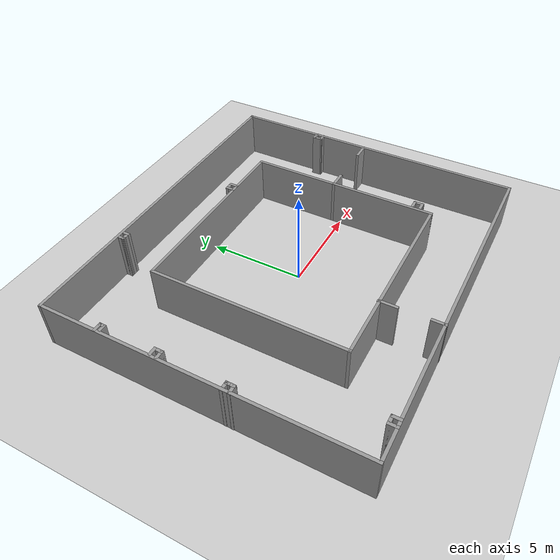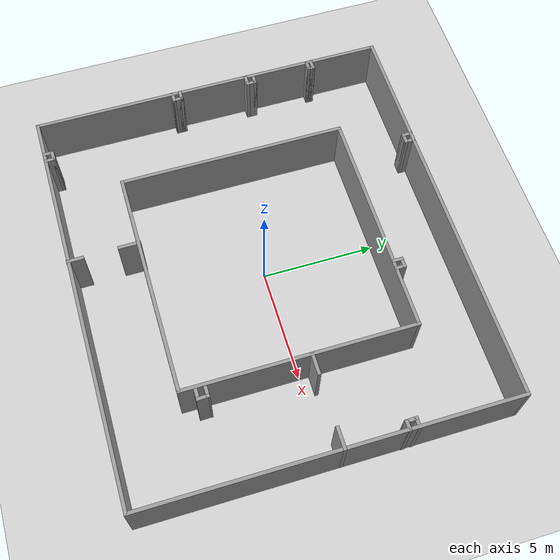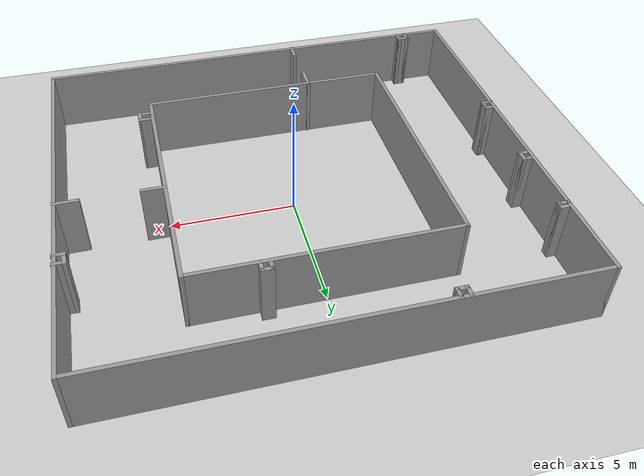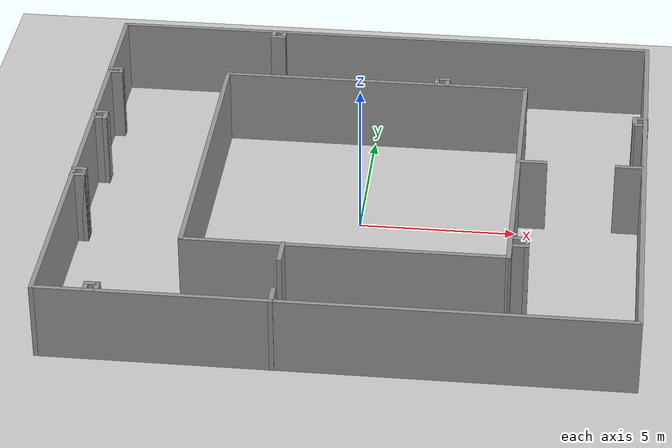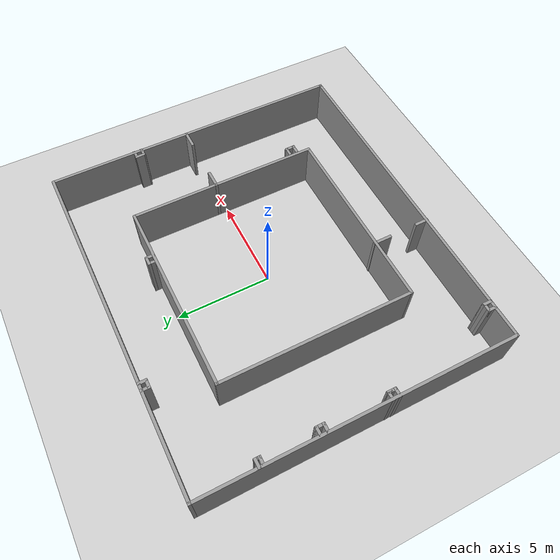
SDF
<sdf version="1.6">
 <world name="default">
  <light name="sun" type="directional">
   <pose>0 0 10 0 -0 0</pose>
   <diffuse>0.8 0.8 0.8 1</diffuse>
   <specular>0.2 0.2 0.2 1</specular>
   <attenuation>
    <range>1000</range>
    <constant>0.9</constant>
    <linear>0.01</linear>
    <quadratic>0.001</quadratic>
   </attenuation>
   <direction>-0.5 0.1 -0.9</direction>
  </light>
  <model name="ground_plane">
   <static>1</static>
   <link name="link">
    <collision name="collision">
     <geometry><plane><normal>0 0 1</normal><size>100 100</size></plane></geometry>
     <surface><friction><ode><mu>100</mu><mu2>50</mu2></ode></friction></surface>
    </collision>
    <visual name="visual">
     <cast_shadows>0</cast_shadows>
     <geometry><plane><normal>0 0 1</normal><size>100 100</size></plane></geometry>
     <material>
      <script><uri>file://media/materials/scripts/gazebo.material</uri><name>Gazebo/Grey</name></script>
     </material>
    </visual>
   </link>
  </model>
  <gravity>0 0 -9.8</gravity>
  <magnetic_field>6e-06 2.3e-05 -4.2e-05</magnetic_field>
  <atmosphere type="adiabatic"/>
  <physics name="default_physics" default="0" type="ode">
   <max_step_size>0.001</max_step_size>
   <real_time_factor>1</real_time_factor>
   <real_time_update_rate>1000</real_time_update_rate>
  </physics>
  <scene><ambient>0.4 0.4 0.4 1</ambient><background>0.7 0.7 0.7 1</background><shadows>1</shadows></scene>
  <audio><device>default</device></audio>
  <spherical_coordinates>
   <surface_model>EARTH_WGS84</surface_model>
   <latitude_deg>0</latitude_deg>
   <longitude_deg>0</longitude_deg>
   <elevation>0</elevation>
   <heading_deg>0</heading_deg>
  </spherical_coordinates>
  <model name="smallHallwayMeasured2">
   <link name="Wall_11">
    <collision name="Wall_11_Collision">
     <geometry><box><size>10.15 0.15 2.5</size></box></geometry>
     <pose>0 0 1.25 0 -0 0</pose>
    </collision>
    <visual name="Wall_11_Visual">
     <pose>0 0 1.25 0 -0 0</pose>
     <geometry><box><size>10.15 0.15 2.5</size></box></geometry>
     <material>
      <script><uri>file://media/materials/scripts/gazebo.material</uri><name>Gazebo/Grey</name></script>
      <ambient>1 1 1 1</ambient>
     </material>
     <meta><layer>0</layer></meta>
    </visual>
    <pose>-4.99509 0.008831 0 0 -0 1.5708</pose>
   </link>
   <link name="Wall_13">
    <collision name="Wall_13_Collision">
     <geometry><box><size>10.15 0.15 2.5</size></box></geometry>
     <pose>0 0 1.25 0 -0 0</pose>
    </collision>
    <visual name="Wall_13_Visual">
     <pose>0 0 1.25 0 -0 0</pose>
     <geometry><box><size>10.15 0.15 2.5</size></box></geometry>
     <material>
      <script><uri>file://media/materials/scripts/gazebo.material</uri><name>Gazebo/Grey</name></script>
      <ambient>1 1 1 1</ambient>
     </material>
     <meta><layer>0</layer></meta>
    </visual>
    <pose>0.004907 5.00883 0 0 -0 0</pose>
   </link>
   <link name="Wall_15">
    <collision name="Wall_15_Collision">
     <geometry><box><size>10.15 0.15 2.5</size></box></geometry>
     <pose>0 0 1.25 0 -0 0</pose>
    </collision>
    <visual name="Wall_15_Visual">
     <pose>0 0 1.25 0 -0 0</pose>
     <geometry><box><size>10.15 0.15 2.5</size></box></geometry>
     <material>
      <script><uri>file://media/materials/scripts/gazebo.material</uri><name>Gazebo/Grey</name></script>
      <ambient>1 1 1 1</ambient>
     </material>
     <meta><layer>0</layer></meta>
    </visual>
    <pose>5.00491 0.008831 0 0 -0 1.5708</pose>
   </link>
   <link name="Wall_17">
    <collision name="Wall_17_Collision">
     <geometry><box><size>18.15 0.15 2.5</size></box></geometry>
     <pose>0 0 1.25 0 -0 0</pose>
    </collision>
    <visual name="Wall_17_Visual">
     <pose>0 0 1.25 0 -0 0</pose>
     <geometry><box><size>18.15 0.15 2.5</size></box></geometry>
     <material>
      <script><uri>file://media/materials/scripts/gazebo.material</uri><name>Gazebo/Grey</name></script>
      <ambient>1 1 1 1</ambient>
     </material>
     <meta><layer>0</layer></meta>
    </visual>
    <pose>0.004907 -7.99117 0 0 -0 3.14159</pose>
   </link>
   <link name="Wall_19">
    <collision name="Wall_19_Collision">
     <geometry><box><size>16.15 0.15 2.5</size></box></geometry>
     <pose>0 0 1.25 0 -0 0</pose>
    </collision>
    <visual name="Wall_19_Visual">
     <pose>0 0 1.25 0 -0 0</pose>
     <geometry><box><size>16.15 0.15 2.5</size></box></geometry>
     <material>
      <script><uri>file://media/materials/scripts/gazebo.material</uri><name>Gazebo/Grey</name></script>
      <ambient>1 1 1 1</ambient>
     </material>
     <meta><layer>0</layer></meta>
    </visual>
    <pose>-8.99509 0.008831 0 0 -0 -1.5708</pose>
   </link>
   <link name="Wall_21">
    <collision name="Wall_21_Collision">
     <geometry><box><size>16.15 0.15 2.5</size></box></geometry>
     <pose>0 0 1.25 0 -0 0</pose>
    </collision>
    <visual name="Wall_21_Visual">
     <pose>0 0 1.25 0 -0 0</pose>
     <geometry><box><size>16.15 0.15 2.5</size></box></geometry>
     <material>
      <script><uri>file://media/materials/scripts/gazebo.material</uri><name>Gazebo/Grey</name></script>
      <ambient>1 1 1 1</ambient>
     </material>
     <meta><layer>0</layer></meta>
    </visual>
    <pose>9.00491 0.008831 0 0 -0 1.5708</pose>
   </link>
   <link name="Wall_23">
    <collision name="Wall_23_Collision">
     <geometry><box><size>18.15 0.15 2.5</size></box></geometry>
     <pose>0 0 1.25 0 -0 0</pose>
    </collision>
    <visual name="Wall_23_Visual">
     <pose>0 0 1.25 0 -0 0</pose>
     <geometry><box><size>18.15 0.15 2.5</size></box></geometry>
     <material>
      <script><uri>file://media/materials/scripts/gazebo.material</uri><name>Gazebo/Grey</name></script>
      <ambient>1 1 1 1</ambient>
     </material>
     <meta><layer>0</layer></meta>
    </visual>
    <pose>0.004907 8.00883 0 0 -0 0</pose>
   </link>
   <link name="Wall_25">
    <collision name="Wall_25_Collision">
     <geometry><box><size>1 0.15 2.5</size></box></geometry>
     <pose>0 0 1.25 0 -0 0</pose>
    </collision>
    <visual name="Wall_25_Visual">
     <pose>0 0 1.25 0 -0 0</pose>
     <geometry><box><size>1 0.15 2.5</size></box></geometry>
     <material>
      <script><uri>file://media/materials/scripts/gazebo.material</uri><name>Gazebo/Grey</name></script>
      <ambient>1 1 1 1</ambient>
     </material>
     <meta><layer>0</layer></meta>
    </visual>
    <pose>5.42972 0.48445 0 0 -0 0</pose>
   </link>
   <link name="Wall_27">
    <collision name="Wall_27_Collision">
     <geometry><box><size>1 0.15 2.5</size></box></geometry>
     <pose>0 0 1.25 0 -0 0</pose>
    </collision>
    <visual name="Wall_27_Visual">
     <pose>0 0 1.25 0 -0 0</pose>
     <geometry><box><size>1 0.15 2.5</size></box></geometry>
     <material>
      <script><uri>file://media/materials/scripts/gazebo.material</uri><name>Gazebo/Grey</name></script>
      <ambient>1 1 1 1</ambient>
     </material>
     <meta><layer>0</layer></meta>
    </visual>
    <pose>8.58328 0.47376 0 0 -0 3.14159</pose>
   </link>
   <link name="Wall_29">
    <collision name="Wall_29_Collision">
     <geometry><box><size>1 0.15 2.5</size></box></geometry>
     <pose>0 0 1.25 0 -0 0</pose>
    </collision>
    <visual name="Wall_29_Visual">
     <pose>0 0 1.25 0 -0 0</pose>
     <geometry><box><size>1 0.15 2.5</size></box></geometry>
     <material>
      <script><uri>file://media/materials/scripts/gazebo.material</uri><name>Gazebo/Grey</name></script>
      <ambient>1 1 1 1</ambient>
     </material>
     <meta><layer>0</layer></meta>
    </visual>
    <pose>-1.86045 -5.38166 0 0 -0 -1.5708</pose>
   </link>
   <link name="Wall_31">
    <collision name="Wall_31_Collision">
     <geometry><box><size>0.75 0.15 2.5</size></box></geometry>
     <pose>0 0 1.25 0 -0 0</pose>
    </collision>
    <visual name="Wall_31_Visual">
     <pose>0 0 1.25 0 -0 0</pose>
     <geometry><box><size>0.75 0.15 2.5</size></box></geometry>
     <material>
      <script><uri>file://media/materials/scripts/gazebo.material</uri><name>Gazebo/Grey</name></script>
      <ambient>1 1 1 1</ambient>
     </material>
     <meta><layer>0</layer></meta>
    </visual>
    <pose>-1.83437 -7.70883 0 0 -0 1.5708</pose>
   </link>
   <link name="Wall_33">
    <collision name="Wall_33_Collision">
     <geometry><box><size>0.5 0.15 2.5</size></box></geometry>
     <pose>0 0 1.25 0 -0 0</pose>
    </collision>
    <visual name="Wall_33_Visual">
     <pose>0 0 1.25 0 -0 0</pose>
     <geometry><box><size>0.5 0.15 2.5</size></box></geometry>
     <material>
      <script><uri>file://media/materials/scripts/gazebo.material</uri><name>Gazebo/Grey</name></script>
      <ambient>1 1 1 1</ambient>
     </material>
     <meta><layer>0</layer></meta>
    </visual>
    <pose>-8.78111 2.11291 0 0 -0 0</pose>
   </link>
   <link name="Wall_34">
    <collision name="Wall_34_Collision">
     <geometry><box><size>0.5 0.15 2.5</size></box></geometry>
     <pose>0 0 1.25 0 -0 0</pose>
    </collision>
    <visual name="Wall_34_Visual">
     <pose>0 0 1.25 0 -0 0</pose>
     <geometry><box><size>0.5 0.15 2.5</size></box></geometry>
     <material>
      <script><uri>file://media/materials/scripts/gazebo.material</uri><name>Gazebo/Grey</name></script>
      <ambient>1 1 1 1</ambient>
     </material>
     <meta><layer>0</layer></meta>
    </visual>
    <pose>-8.60611 1.93791 0 0 -0 -1.5708</pose>
   </link>
   <link name="Wall_35">
    <collision name="Wall_35_Collision">
     <geometry><box><size>0.5 0.15 2.5</size></box></geometry>
     <pose>0 0 1.25 0 -0 0</pose>
    </collision>
    <visual name="Wall_35_Visual">
     <pose>0 0 1.25 0 -0 0</pose>
     <geometry><box><size>0.5 0.15 2.5</size></box></geometry>
     <material>
      <script><uri>file://media/materials/scripts/gazebo.material</uri><name>Gazebo/Grey</name></script>
      <ambient>1 1 1 1</ambient>
     </material>
     <meta><layer>0</layer></meta>
    </visual>
    <pose>-8.78111 1.76291 0 0 -0 3.14159</pose>
   </link>
   <link name="Wall_37">
    <collision name="Wall_37_Collision">
     <geometry><box><size>0.5 0.15 2.5</size></box></geometry>
     <pose>0 0 1.25 0 -0 0</pose>
    </collision>
    <visual name="Wall_37_Visual">
     <pose>0 0 1.25 0 -0 0</pose>
     <geometry><box><size>0.5 0.15 2.5</size></box></geometry>
     <material>
      <script><uri>file://media/materials/scripts/gazebo.material</uri><name>Gazebo/Grey</name></script>
      <ambient>1 1 1 1</ambient>
     </material>
     <meta><layer>0</layer></meta>
    </visual>
    <pose>-8.83328 -1.38274 0 0 -0 0</pose>
   </link>
   <link name="Wall_38">
    <collision name="Wall_38_Collision">
     <geometry><box><size>0.25 0.15 2.5</size></box></geometry>
     <pose>0 0 1.25 0 -0 0</pose>
    </collision>
    <visual name="Wall_38_Visual">
     <pose>0 0 1.25 0 -0 0</pose>
     <geometry><box><size>0.25 0.15 2.5</size></box></geometry>
     <material>
      <script><uri>file://media/materials/scripts/gazebo.material</uri><name>Gazebo/Grey</name></script>
      <ambient>1 1 1 1</ambient>
     </material>
     <meta><layer>0</layer></meta>
    </visual>
    <pose>-8.65828 -1.43274 0 0 -0 -1.5708</pose>
   </link>
   <link name="Wall_41">
    <collision name="Wall_41_Collision">
     <geometry><box><size>0.5 0.15 2.5</size></box></geometry>
     <pose>0 0 1.25 0 -0 0</pose>
    </collision>
    <visual name="Wall_41_Visual">
     <pose>0 0 1.25 0 -0 0</pose>
     <geometry><box><size>0.5 0.15 2.5</size></box></geometry>
     <material>
      <script><uri>file://media/materials/scripts/gazebo.material</uri><name>Gazebo/Grey</name></script>
      <ambient>1 1 1 1</ambient>
     </material>
     <meta><layer>0</layer></meta>
    </visual>
    <pose>-8.65828 -1.55774 0 0 -0 -1.5708</pose>
   </link>
   <link name="Wall_42">
    <collision name="Wall_42_Collision">
     <geometry><box><size>0.5 0.15 2.5</size></box></geometry>
     <pose>0 0 1.25 0 -0 0</pose>
    </collision>
    <visual name="Wall_42_Visual">
     <pose>0 0 1.25 0 -0 0</pose>
     <geometry><box><size>0.5 0.15 2.5</size></box></geometry>
     <material>
      <script><uri>file://media/materials/scripts/gazebo.material</uri><name>Gazebo/Grey</name></script>
      <ambient>1 1 1 1</ambient>
     </material>
     <meta><layer>0</layer></meta>
    </visual>
    <pose>-8.83328 -1.73274 0 0 -0 3.14159</pose>
   </link>
   <link name="Wall_44">
    <collision name="Wall_44_Collision">
     <geometry><box><size>0.5 0.15 2.5</size></box></geometry>
     <pose>0 0 1.25 0 -0 0</pose>
    </collision>
    <visual name="Wall_44_Visual">
     <pose>0 0 1.25 0 -0 0</pose>
     <geometry><box><size>0.5 0.15 2.5</size></box></geometry>
     <material>
      <script><uri>file://media/materials/scripts/gazebo.material</uri><name>Gazebo/Grey</name></script>
      <ambient>1 1 1 1</ambient>
     </material>
     <meta><layer>0</layer></meta>
    </visual>
    <pose>-8.80719 4.95639 0 0 -0 0</pose>
   </link>
   <link name="Wall_45">
    <collision name="Wall_45_Collision">
     <geometry><box><size>0.25 0.15 2.5</size></box></geometry>
     <pose>0 0 1.25 0 -0 0</pose>
    </collision>
    <visual name="Wall_45_Visual">
     <pose>0 0 1.25 0 -0 0</pose>
     <geometry><box><size>0.25 0.15 2.5</size></box></geometry>
     <material>
      <script><uri>file://media/materials/scripts/gazebo.material</uri><name>Gazebo/Grey</name></script>
      <ambient>1 1 1 1</ambient>
     </material>
     <meta><layer>0</layer></meta>
    </visual>
    <pose>-8.63219 4.90639 0 0 -0 -1.5708</pose>
   </link>
   <link name="Wall_46">
    <collision name="Wall_46_Collision">
     <geometry><box><size>0.25 0.15 2.5</size></box></geometry>
     <pose>0 0 1.25 0 -0 0</pose>
    </collision>
    <visual name="Wall_46_Visual">
     <pose>0 0 1.25 0 -0 0</pose>
     <geometry><box><size>0.25 0.15 2.5</size></box></geometry>
     <material>
      <script><uri>file://media/materials/scripts/gazebo.material</uri><name>Gazebo/Grey</name></script>
      <ambient>1 1 1 1</ambient>
     </material>
     <meta><layer>0</layer></meta>
    </visual>
    <pose>-8.63219 4.80639 0 0 -0 -1.5708</pose>
   </link>
   <link name="Wall_47">
    <collision name="Wall_47_Collision">
     <geometry><box><size>0.5 0.15 2.5</size></box></geometry>
     <pose>0 0 1.25 0 -0 0</pose>
    </collision>
    <visual name="Wall_47_Visual">
     <pose>0 0 1.25 0 -0 0</pose>
     <geometry><box><size>0.5 0.15 2.5</size></box></geometry>
     <material>
      <script><uri>file://media/materials/scripts/gazebo.material</uri><name>Gazebo/Grey</name></script>
      <ambient>1 1 1 1</ambient>
     </material>
     <meta><layer>0</layer></meta>
    </visual>
    <pose>-8.80719 4.75639 0 0 -0 3.14159</pose>
   </link>
   <link name="Wall_49">
    <collision name="Wall_49_Collision">
     <geometry><box><size>0.5 0.15 2.5</size></box></geometry>
     <pose>0 0 1.25 0 -0 0</pose>
    </collision>
    <visual name="Wall_49_Visual">
     <pose>0 0 1.25 0 -0 0</pose>
     <geometry><box><size>0.5 0.15 2.5</size></box></geometry>
     <material>
      <script><uri>file://media/materials/scripts/gazebo.material</uri><name>Gazebo/Grey</name></script>
      <ambient>1 1 1 1</ambient>
     </material>
     <meta><layer>0</layer></meta>
    </visual>
    <pose>-3.81697 7.83356 0 0 -0 -1.5708</pose>
   </link>
   <link name="Wall_50">
    <collision name="Wall_50_Collision">
     <geometry><box><size>0.5 0.15 2.5</size></box></geometry>
     <pose>0 0 1.25 0 -0 0</pose>
    </collision>
    <visual name="Wall_50_Visual">
     <pose>0 0 1.25 0 -0 0</pose>
     <geometry><box><size>0.5 0.15 2.5</size></box></geometry>
     <material>
      <script><uri>file://media/materials/scripts/gazebo.material</uri><name>Gazebo/Grey</name></script>
      <ambient>1 1 1 1</ambient>
     </material>
     <meta><layer>0</layer></meta>
    </visual>
    <pose>-3.64197 7.65856 0 0 -0 0</pose>
   </link>
   <link name="Wall_53">
    <collision name="Wall_53_Collision">
     <geometry><box><size>0.5 0.15 2.5</size></box></geometry>
     <pose>0 0 1.25 0 -0 0</pose>
    </collision>
    <visual name="Wall_53_Visual">
     <pose>0 0 1.25 0 -0 0</pose>
     <geometry><box><size>0.5 0.15 2.5</size></box></geometry>
     <material>
      <script><uri>file://media/materials/scripts/gazebo.material</uri><name>Gazebo/Grey</name></script>
      <ambient>1 1 1 1</ambient>
     </material>
     <meta><layer>0</layer></meta>
    </visual>
    <pose>-3.46698 7.83356 0 0 -0 1.5708</pose>
   </link>
   <link name="Wall_55">
    <collision name="Wall_55_Collision">
     <geometry><box><size>0.5 0.15 2.5</size></box></geometry>
     <pose>0 0 1.25 0 -0 0</pose>
    </collision>
    <visual name="Wall_55_Visual">
     <pose>0 0 1.25 0 -0 0</pose>
     <geometry><box><size>0.5 0.15 2.5</size></box></geometry>
     <material>
      <script><uri>file://media/materials/scripts/gazebo.material</uri><name>Gazebo/Grey</name></script>
      <ambient>1 1 1 1</ambient>
     </material>
     <meta><layer>0</layer></meta>
    </visual>
    <pose>2.03633 5.19847 0 0 -0 1.5708</pose>
   </link>
   <link name="Wall_56">
    <collision name="Wall_56_Collision">
     <geometry><box><size>0.5 0.15 2.5</size></box></geometry>
     <pose>0 0 1.25 0 -0 0</pose>
    </collision>
    <visual name="Wall_56_Visual">
     <pose>0 0 1.25 0 -0 0</pose>
     <geometry><box><size>0.5 0.15 2.5</size></box></geometry>
     <material>
      <script><uri>file://media/materials/scripts/gazebo.material</uri><name>Gazebo/Grey</name></script>
      <ambient>1 1 1 1</ambient>
     </material>
     <meta><layer>0</layer></meta>
    </visual>
    <pose>2.21132 5.37347 0 0 -0 0</pose>
   </link>
   <link name="Wall_57">
    <collision name="Wall_57_Collision">
     <geometry><box><size>0.5 0.15 2.5</size></box></geometry>
     <pose>0 0 1.25 0 -0 0</pose>
    </collision>
    <visual name="Wall_57_Visual">
     <pose>0 0 1.25 0 -0 0</pose>
     <geometry><box><size>0.5 0.15 2.5</size></box></geometry>
     <material>
      <script><uri>file://media/materials/scripts/gazebo.material</uri><name>Gazebo/Grey</name></script>
      <ambient>1 1 1 1</ambient>
     </material>
     <meta><layer>0</layer></meta>
    </visual>
    <pose>2.38632 5.19847 0 0 -0 -1.5708</pose>
   </link>
   <link name="Wall_59">
    <collision name="Wall_59_Collision">
     <geometry><box><size>0.5 0.15 2.5</size></box></geometry>
     <pose>0 0 1.25 0 -0 0</pose>
    </collision>
    <visual name="Wall_59_Visual">
     <pose>0 0 1.25 0 -0 0</pose>
     <geometry><box><size>0.5 0.15 2.5</size></box></geometry>
     <material>
      <script><uri>file://media/materials/scripts/gazebo.material</uri><name>Gazebo/Grey</name></script>
      <ambient>1 1 1 1</ambient>
     </material>
     <meta><layer>0</layer></meta>
    </visual>
    <pose>-7.40154 -7.81156 0 0 -0 1.5708</pose>
   </link>
   <link name="Wall_60">
    <collision name="Wall_60_Collision">
     <geometry><box><size>0.5 0.15 2.5</size></box></geometry>
     <pose>0 0 1.25 0 -0 0</pose>
    </collision>
    <visual name="Wall_60_Visual">
     <pose>0 0 1.25 0 -0 0</pose>
     <geometry><box><size>0.5 0.15 2.5</size></box></geometry>
     <material>
      <script><uri>file://media/materials/scripts/gazebo.material</uri><name>Gazebo/Grey</name></script>
      <ambient>1 1 1 1</ambient>
     </material>
     <meta><layer>0</layer></meta>
    </visual>
    <pose>-7.22654 -7.63656 0 0 -0 0</pose>
   </link>
   <link name="Wall_61">
    <collision name="Wall_61_Collision">
     <geometry><box><size>0.5 0.15 2.5</size></box></geometry>
     <pose>0 0 1.25 0 -0 0</pose>
    </collision>
    <visual name="Wall_61_Visual">
     <pose>0 0 1.25 0 -0 0</pose>
     <geometry><box><size>0.5 0.15 2.5</size></box></geometry>
     <material>
      <script><uri>file://media/materials/scripts/gazebo.material</uri><name>Gazebo/Grey</name></script>
      <ambient>1 1 1 1</ambient>
     </material>
     <meta><layer>0</layer></meta>
    </visual>
    <pose>-7.05154 -7.81156 0 0 -0 -1.5708</pose>
   </link>
   <link name="Wall_9">
    <collision name="Wall_9_Collision">
     <geometry><box><size>10.15 0.15 2.5</size></box></geometry>
     <pose>0 0 1.25 0 -0 0</pose>
    </collision>
    <visual name="Wall_9_Visual">
     <pose>0 0 1.25 0 -0 0</pose>
     <geometry><box><size>10.15 0.15 2.5</size></box></geometry>
     <material>
      <script><uri>file://media/materials/scripts/gazebo.material</uri><name>Gazebo/Grey</name></script>
      <ambient>1 1 1 1</ambient>
     </material>
     <meta><layer>0</layer></meta>
    </visual>
    <pose>0.004907 -4.99117 0 0 -0 0</pose>
   </link>
   <static>1</static>
  </model>
  <model name="pillar">
   <pose>5.3409 -4.145 0 0 -0 0</pose>
   <link name="Wall_1">
    <collision name="Wall_1_Collision">
     <geometry><box><size>0.5 0.15 2.5</size></box></geometry>
     <pose>0 0 1.25 0 -0 0</pose>
    </collision>
    <visual name="Wall_1_Visual">
     <pose>0 0 1.25 0 -0 0</pose>
     <geometry><box><size>0.5 0.15 2.5</size></box></geometry>
     <material>
      <script><uri>file://media/materials/scripts/gazebo.material</uri><name>Gazebo/Grey</name></script>
      <ambient>1 1 1 1</ambient>
     </material>
     <meta><layer>0</layer></meta>
    </visual>
    <pose>-0.005903 0.205 0 0 -0 0</pose>
   </link>
   <link name="Wall_2">
    <collision name="Wall_2_Collision">
     <geometry><box><size>0.560122 0.15 2.5</size></box></geometry>
     <pose>0 0 1.25 0 -0 0</pose>
    </collision>
    <visual name="Wall_2_Visual">
     <pose>0 0 1.25 0 -0 0</pose>
     <geometry><box><size>0.560122 0.15 2.5</size></box></geometry>
     <material>
      <script><uri>file://media/materials/scripts/gazebo.material</uri><name>Gazebo/Grey</name></script>
      <ambient>1 1 1 1</ambient>
     </material>
     <meta><layer>0</layer></meta>
    </visual>
    <pose>0.174097 0 0 0 -0 -1.54641</pose>
   </link>
   <link name="Wall_3">
    <collision name="Wall_3_Collision">
     <geometry><box><size>0.5 0.15 2.5</size></box></geometry>
     <pose>0 0 1.25 0 -0 0</pose>
    </collision>
    <visual name="Wall_3_Visual">
     <pose>0 0 1.25 0 -0 0</pose>
     <geometry><box><size>0.5 0.15 2.5</size></box></geometry>
     <material>
      <script><uri>file://media/materials/scripts/gazebo.material</uri><name>Gazebo/Grey</name></script>
      <ambient>1 1 1 1</ambient>
     </material>
     <meta><layer>0</layer></meta>
    </visual>
    <pose>-0.005903 -0.195 0 0 -0 3.14159</pose>
   </link>
   <static>1</static>
  </model>
  <model name="pillar_clone">
   <pose>8.84484 3.29271 0 0 0 -3.1359</pose>
   <link name="Wall_1">
    <collision name="Wall_1_Collision">
     <geometry><box><size>0.5 0.15 2.5</size></box></geometry>
     <pose>0 0 1.25 0 -0 0</pose>
    </collision>
    <visual name="Wall_1_Visual">
     <pose>0 0 1.25 0 -0 0</pose>
     <geometry><box><size>0.5 0.15 2.5</size></box></geometry>
     <material>
      <script><uri>file://media/materials/scripts/gazebo.material</uri><name>Gazebo/Grey</name></script>
      <ambient>1 1 1 1</ambient>
     </material>
     <meta><layer>0</layer></meta>
    </visual>
    <pose>-0.005903 0.205 0 0 -0 0</pose>
   </link>
   <link name="Wall_2">
    <collision name="Wall_2_Collision">
     <geometry><box><size>0.560122 0.15 2.5</size></box></geometry>
     <pose>0 0 1.25 0 -0 0</pose>
    </collision>
    <visual name="Wall_2_Visual">
     <pose>0 0 1.25 0 -0 0</pose>
     <geometry><box><size>0.560122 0.15 2.5</size></box></geometry>
     <material>
      <script><uri>file://media/materials/scripts/gazebo.material</uri><name>Gazebo/Grey</name></script>
      <ambient>1 1 1 1</ambient>
     </material>
     <meta><layer>0</layer></meta>
    </visual>
    <pose>0.174097 0 0 0 -0 -1.54641</pose>
   </link>
   <link name="Wall_3">
    <collision name="Wall_3_Collision">
     <geometry><box><size>0.5 0.15 2.5</size></box></geometry>
     <pose>0 0 1.25 0 -0 0</pose>
    </collision>
    <visual name="Wall_3_Visual">
     <pose>0 0 1.25 0 -0 0</pose>
     <geometry><box><size>0.5 0.15 2.5</size></box></geometry>
     <material>
      <script><uri>file://media/materials/scripts/gazebo.material</uri><name>Gazebo/Grey</name></script>
      <ambient>1 1 1 1</ambient>
     </material>
     <meta><layer>0</layer></meta>
    </visual>
    <pose>-0.005903 -0.195 0 0 -0 3.14159</pose>
   </link>
   <static>1</static>
  </model>
 </world>
</sdf>
